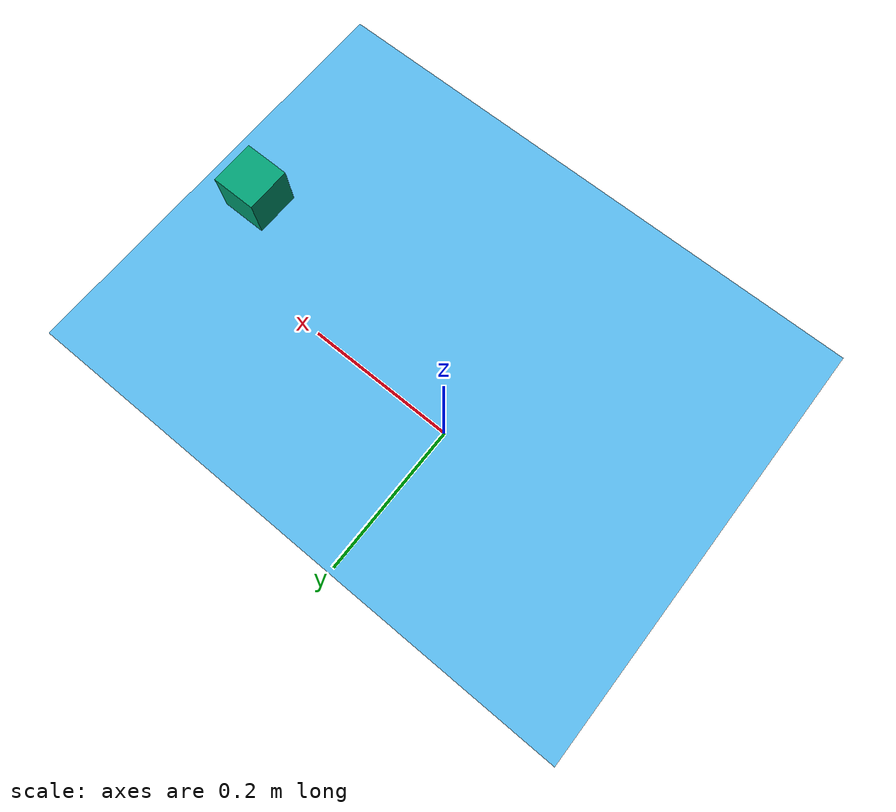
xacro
<?xml version="1.0"?>
<robot xmlns:xacro="http://www.ros.org/wiki/xacro" name="factory_robot">
  <!-- Geometry placeholder. Add ros2_control and Gazebo drive/sensor plugins
       matching your installed ros_gz version before expecting motion/sensor topics. -->
  <link name="base_footprint"/>
  <link name="base_link">
    <visual><geometry><box size="0.516 0.39 0.20"/></geometry><origin xyz="0 0 0.12"/></visual>
    <collision><geometry><box size="0.516 0.39 0.20"/></geometry><origin xyz="0 0 0.12"/></collision>
    <inertial><mass value="8.0"/><origin xyz="0 0 0.12"/><inertia ixx="0.15" ixy="0" ixz="0" iyy="0.20" iyz="0" izz="0.25"/></inertial>
  </link>
  <joint name="base_footprint_joint" type="fixed">
    <parent link="base_footprint"/><child link="base_link"/><origin xyz="0 0 0.10"/>
  </joint>
  <link name="camera_link">
    <visual><geometry><box size="0.04 0.04 0.04"/></geometry></visual>
  </link>
  <joint name="camera_joint" type="fixed">
    <parent link="base_link"/><child link="camera_link"/><origin xyz="0.20 0 0.25"/>
  </joint>
  <link name="ultrasonic_link"/>
  <joint name="ultrasonic_joint" type="fixed">
    <parent link="base_link"/><child link="ultrasonic_link"/><origin xyz="0.24 0 0.10"/>
  </joint>
</robot>
